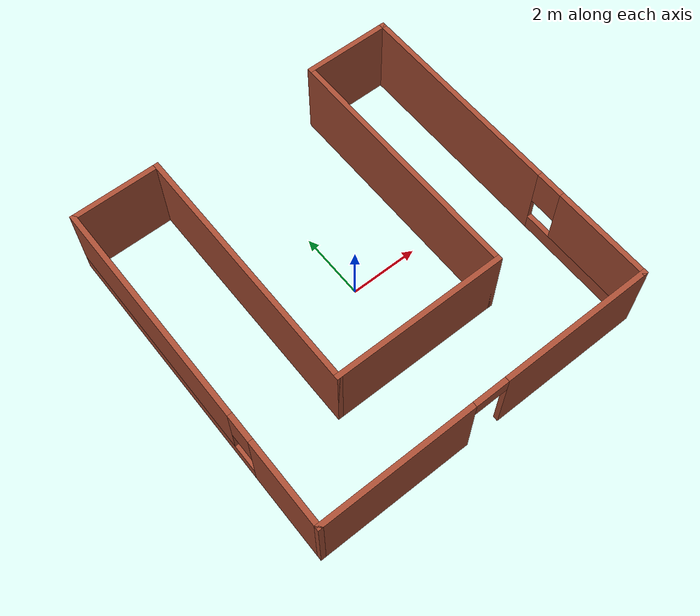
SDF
<?xml version='1.0'?>
<sdf version='1.6'>
  <model name='prj1_building'>
    <pose frame=''>0 0 0 0 -0 0</pose>
    <link name='Wall_0'>
      <pose frame=''>-5 0 0 0 -0 1.5708</pose>
      <visual name='Wall_0_Visual_0'>
        <pose frame=''>-3.7875 0 1.25 0 -0 0</pose>
        <geometry>
          <box>
            <size>2.575 0.15 2.5</size>
          </box>
        </geometry>
        <material>
          <script>
            <uri>file://media/materials/scripts/gazebo.material</uri>
            <name>Gazebo/Bricks</name>
          </script>
          <ambient>0.996078 0.47451 0.0196078 1</ambient>
        </material>
        <meta>
          <layer>0</layer>
        </meta>
      </visual>
      <collision name='Wall_0_Collision_0'>
        <geometry>
          <box>
            <size>2.575 0.15 2.5</size>
          </box>
        </geometry>
        <pose frame=''>-3.7875 0 1.25 0 -0 0</pose>
      </collision>
      <visual name='Wall_0_Visual_1'>
        <pose frame=''>1.2875 0 0.25 0 -0 0</pose>
        <geometry>
          <box>
            <size>7.575 0.15 0.5</size>
          </box>
        </geometry>
        <material>
          <script>
            <uri>file://media/materials/scripts/gazebo.material</uri>
            <name>Gazebo/Bricks</name>
          </script>
          <ambient>0.996078 0.47451 0.0196078 1</ambient>
        </material>
        <meta>
          <layer>0</layer>
        </meta>
      </visual>
      <collision name='Wall_0_Collision_1'>
        <geometry>
          <box>
            <size>7.575 0.15 0.5</size>
          </box>
        </geometry>
        <pose frame=''>1.2875 0 0.25 0 -0 0</pose>
      </collision>
      <visual name='Wall_0_Visual_2'>
        <pose frame=''>1.6875 0 1.5 0 -0 0</pose>
        <geometry>
          <box>
            <size>6.775 0.15 2</size>
          </box>
        </geometry>
        <material>
          <script>
            <uri>file://media/materials/scripts/gazebo.material</uri>
            <name>Gazebo/Bricks</name>
          </script>
          <ambient>0.996078 0.47451 0.0196078 1</ambient>
        </material>
        <meta>
          <layer>0</layer>
        </meta>
      </visual>
      <collision name='Wall_0_Collision_2'>
        <geometry>
          <box>
            <size>6.775 0.15 2</size>
          </box>
        </geometry>
        <pose frame=''>1.6875 0 1.5 0 -0 0</pose>
      </collision>
      <visual name='Wall_0_Visual_3'>
        <pose frame=''>-2.1 0 1.9 0 -0 0</pose>
        <geometry>
          <box>
            <size>0.8 0.15 1.2</size>
          </box>
        </geometry>
        <material>
          <script>
            <uri>file://media/materials/scripts/gazebo.material</uri>
            <name>Gazebo/Bricks</name>
          </script>
          <ambient>0.996078 0.47451 0.0196078 1</ambient>
        </material>
        <meta>
          <layer>0</layer>
        </meta>
      </visual>
      <collision name='Wall_0_Collision_3'>
        <geometry>
          <box>
            <size>0.8 0.15 1.2</size>
          </box>
        </geometry>
        <pose frame=''>-2.1 0 1.9 0 -0 0</pose>
      </collision>
    </link>
    <link name='Wall_1'>
      <collision name='Wall_1_Collision'>
        <geometry>
          <box>
            <size>2.65 0.15 2.5</size>
          </box>
        </geometry>
        <pose frame=''>0 0 1.25 0 -0 0</pose>
      </collision>
      <visual name='Wall_1_Visual'>
        <pose frame=''>0 0 1.25 0 -0 0</pose>
        <geometry>
          <box>
            <size>2.65 0.15 2.5</size>
          </box>
        </geometry>
        <material>
          <script>
            <uri>file://media/materials/scripts/gazebo.material</uri>
            <name>Gazebo/Bricks</name>
          </script>
          <ambient>0.996078 0.47451 0.0196078 1</ambient>
        </material>
        <meta>
          <layer>0</layer>
        </meta>
      </visual>
      <pose frame=''>-3.75 5 0 0 -0 0</pose>
    </link>
    <link name='Wall_2'>
      <collision name='Wall_2_Collision'>
        <geometry>
          <box>
            <size>7.65 0.15 2.5</size>
          </box>
        </geometry>
        <pose frame=''>0 0 1.25 0 -0 0</pose>
      </collision>
      <visual name='Wall_2_Visual'>
        <pose frame=''>0 0 1.25 0 -0 0</pose>
        <geometry>
          <box>
            <size>7.65 0.15 2.5</size>
          </box>
        </geometry>
        <material>
          <script>
            <uri>file://media/materials/scripts/gazebo.material</uri>
            <name>Gazebo/Bricks</name>
          </script>
          <ambient>0.996078 0.47451 0.0196078 1</ambient>
        </material>
        <meta>
          <layer>0</layer>
        </meta>
      </visual>
      <pose frame=''>-2.5 1.25 0 0 0 -1.5708</pose>
    </link>
    <link name='Wall_3'>
      <collision name='Wall_3_Collision'>
        <geometry>
          <box>
            <size>5.15 0.15 2.5</size>
          </box>
        </geometry>
        <pose frame=''>0 0 1.25 0 -0 0</pose>
      </collision>
      <visual name='Wall_3_Visual'>
        <pose frame=''>0 0 1.25 0 -0 0</pose>
        <geometry>
          <box>
            <size>5.15 0.15 2.5</size>
          </box>
        </geometry>
        <material>
          <script>
            <uri>file://media/materials/scripts/gazebo.material</uri>
            <name>Gazebo/Bricks</name>
          </script>
          <ambient>0.996078 0.47451 0.0196078 1</ambient>
        </material>
        <meta>
          <layer>0</layer>
        </meta>
      </visual>
      <pose frame=''>0 -2.5 0 0 -0 0</pose>
    </link>
    <link name='Wall_4'>
      <collision name='Wall_4_Collision'>
        <geometry>
          <box>
            <size>7.65 0.15 2.5</size>
          </box>
        </geometry>
        <pose frame=''>0 0 1.25 0 -0 0</pose>
      </collision>
      <visual name='Wall_4_Visual'>
        <pose frame=''>0 0 1.25 0 -0 0</pose>
        <geometry>
          <box>
            <size>7.65 0.15 2.5</size>
          </box>
        </geometry>
        <material>
          <script>
            <uri>file://media/materials/scripts/gazebo.material</uri>
            <name>Gazebo/Bricks</name>
          </script>
          <ambient>0.996078 0.47451 0.0196078 1</ambient>
        </material>
        <meta>
          <layer>0</layer>
        </meta>
      </visual>
      <pose frame=''>2.5 1.25 0 0 -0 1.5708</pose>
    </link>
    <link name='Wall_5'>
      <collision name='Wall_5_Collision'>
        <geometry>
          <box>
            <size>2.65 0.15 2.5</size>
          </box>
        </geometry>
        <pose frame=''>0 0 1.25 0 -0 0</pose>
      </collision>
      <visual name='Wall_5_Visual'>
        <pose frame=''>0 0 1.25 0 -0 0</pose>
        <geometry>
          <box>
            <size>2.65 0.15 2.5</size>
          </box>
        </geometry>
        <material>
          <script>
            <uri>file://media/materials/scripts/gazebo.material</uri>
            <name>Gazebo/Bricks</name>
          </script>
          <ambient>0.996078 0.47451 0.0196078 1</ambient>
        </material>
        <meta>
          <layer>0</layer>
        </meta>
      </visual>
      <pose frame=''>3.75 5 0 0 -0 0</pose>
    </link>
    <link name='Wall_6'>
      <pose frame=''>5 0 0 0 0 -1.5708</pose>
      <visual name='Wall_6_Visual_0'>
        <pose frame=''>-1.8725 0 1.25 0 -0 0</pose>
        <geometry>
          <box>
            <size>6.405 0.15 2.5</size>
          </box>
        </geometry>
        <material>
          <script>
            <uri>file://media/materials/scripts/gazebo.material</uri>
            <name>Gazebo/Bricks</name>
          </script>
          <ambient>0.996078 0.47451 0.0196078 1</ambient>
        </material>
        <meta>
          <layer>0</layer>
        </meta>
      </visual>
      <collision name='Wall_6_Collision_0'>
        <geometry>
          <box>
            <size>6.405 0.15 2.5</size>
          </box>
        </geometry>
        <pose frame=''>-1.8725 0 1.25 0 -0 0</pose>
      </collision>
      <visual name='Wall_6_Visual_1'>
        <pose frame=''>3.2025 0 0.25 0 -0 0</pose>
        <geometry>
          <box>
            <size>3.745 0.15 0.5</size>
          </box>
        </geometry>
        <material>
          <script>
            <uri>file://media/materials/scripts/gazebo.material</uri>
            <name>Gazebo/Bricks</name>
          </script>
          <ambient>0.996078 0.47451 0.0196078 1</ambient>
        </material>
        <meta>
          <layer>0</layer>
        </meta>
      </visual>
      <collision name='Wall_6_Collision_1'>
        <geometry>
          <box>
            <size>3.745 0.15 0.5</size>
          </box>
        </geometry>
        <pose frame=''>3.2025 0 0.25 0 -0 0</pose>
      </collision>
      <visual name='Wall_6_Visual_2'>
        <pose frame=''>3.6025 0 1.5 0 -0 0</pose>
        <geometry>
          <box>
            <size>2.945 0.15 2</size>
          </box>
        </geometry>
        <material>
          <script>
            <uri>file://media/materials/scripts/gazebo.material</uri>
            <name>Gazebo/Bricks</name>
          </script>
          <ambient>0.996078 0.47451 0.0196078 1</ambient>
        </material>
        <meta>
          <layer>0</layer>
        </meta>
      </visual>
      <collision name='Wall_6_Collision_2'>
        <geometry>
          <box>
            <size>2.945 0.15 2</size>
          </box>
        </geometry>
        <pose frame=''>3.6025 0 1.5 0 -0 0</pose>
      </collision>
      <visual name='Wall_6_Visual_3'>
        <pose frame=''>1.73 0 1.9 0 -0 0</pose>
        <geometry>
          <box>
            <size>0.8 0.15 1.2</size>
          </box>
        </geometry>
        <material>
          <script>
            <uri>file://media/materials/scripts/gazebo.material</uri>
            <name>Gazebo/Bricks</name>
          </script>
          <ambient>0.996078 0.47451 0.0196078 1</ambient>
        </material>
        <meta>
          <layer>0</layer>
        </meta>
      </visual>
      <collision name='Wall_6_Collision_3'>
        <geometry>
          <box>
            <size>0.8 0.15 1.2</size>
          </box>
        </geometry>
        <pose frame=''>1.73 0 1.9 0 -0 0</pose>
      </collision>
    </link>
    <link name='Wall_7'>
      <pose frame=''>0 -5 0 0 -0 3.14159</pose>
      <visual name='Wall_7_Visual_0'>
        <pose frame=''>-2.7875 0 1.25 0 -0 0</pose>
        <geometry>
          <box>
            <size>4.575 0.15 2.5</size>
          </box>
        </geometry>
        <material>
          <script>
            <uri>file://media/materials/scripts/gazebo.material</uri>
            <name>Gazebo/Bricks</name>
          </script>
          <ambient>0.996078 0.47451 0.0196078 1</ambient>
        </material>
        <meta>
          <layer>0</layer>
        </meta>
      </visual>
      <collision name='Wall_7_Collision_0'>
        <geometry>
          <box>
            <size>4.575 0.15 2.5</size>
          </box>
        </geometry>
        <pose frame=''>-2.7875 0 1.25 0 -0 0</pose>
      </collision>
      <visual name='Wall_7_Visual_1'>
        <pose frame=''>2.7875 0 1.25 0 -0 0</pose>
        <geometry>
          <box>
            <size>4.575 0.15 2.5</size>
          </box>
        </geometry>
        <material>
          <script>
            <uri>file://media/materials/scripts/gazebo.material</uri>
            <name>Gazebo/Bricks</name>
          </script>
          <ambient>0.996078 0.47451 0.0196078 1</ambient>
        </material>
        <meta>
          <layer>0</layer>
        </meta>
      </visual>
      <collision name='Wall_7_Collision_1'>
        <geometry>
          <box>
            <size>4.575 0.15 2.5</size>
          </box>
        </geometry>
        <pose frame=''>2.7875 0 1.25 0 -0 0</pose>
      </collision>
      <visual name='Wall_7_Visual_2'>
        <pose frame=''>0 0 2.25 0 -0 0</pose>
        <geometry>
          <box>
            <size>1 0.15 0.5</size>
          </box>
        </geometry>
        <material>
          <script>
            <uri>file://media/materials/scripts/gazebo.material</uri>
            <name>Gazebo/Bricks</name>
          </script>
          <ambient>0.996078 0.47451 0.0196078 1</ambient>
        </material>
        <meta>
          <layer>0</layer>
        </meta>
      </visual>
      <collision name='Wall_7_Collision_2'>
        <geometry>
          <box>
            <size>1 0.15 0.5</size>
          </box>
        </geometry>
        <pose frame=''>0 0 2.25 0 -0 0</pose>
      </collision>
    </link>
    <static>1</static>
  </model>
</sdf>
